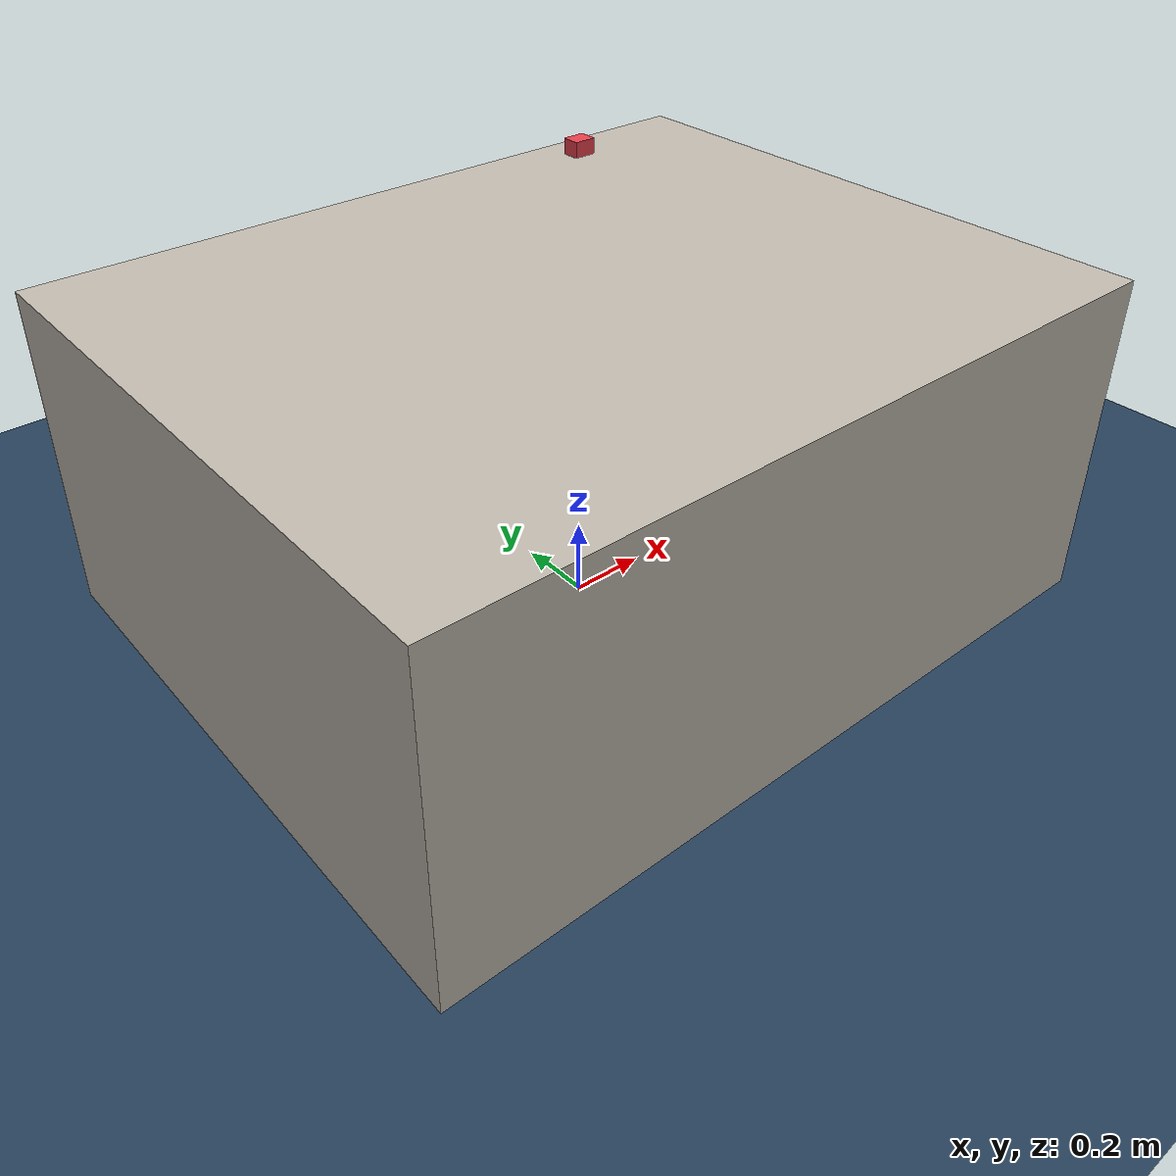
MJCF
<mujoco model="tabletop">
    <compiler angle="radian" />
    <size njmax="10000" nconmax="2000" />
	<option timestep="0.002">
		<flag warmstart="enable"></flag>
	</option>
    <option gravity="0 0 -9.8"/>
    <default class="table">
        <joint damping='0.1'/>
    </default>

    <asset>
        <!--Textures-->
        <texture name="floor_tex"   type="2d"       builtin="checker" rgb1=".2 .3 .4" rgb2=".1 .2 .3" width="100" height="100" />
        <texture name="table_tex"   type="2d"       builtin="none" file="../textures/table_test.png" rgb1=".2 .3 .4" rgb2=".1 .2 .3" width="100" height="100" />
        <!--Materials-->
        <material name='floor_mat'      texture="floor_tex"  shininess="0.8" texrepeat="10 10" specular="0.7"  reflectance="0.5" />
        <!--material name="bench_mat"      texture="floor_tex"   shininess="0.1" specular="0.5" reflectance="0.2"/-->
        <material name="bench_mat"      texture="table_tex"   shininess="0.1" specular="0.1" reflectance="0.2"/>
    </asset>
    <worldbody>
        <!--Lighting parameters-->
        <light name="light3" mode="targetbody" target="box_link" directional="true" pos="1 1 3" />

        <!--Floor Property-->
        <geom name='floor' material="floor_mat" pos='0 0 0' size='2.5 2.5 0.1'  type='plane' />

        <body mocap="true" name="robot0:mocap" pos="0 0 0">
            <geom conaffinity="0" contype="0" pos="0 0 0" rgba="0 0.5 0 0.0" size="0.005 0.005 0.005" type="box"></geom>
            <geom conaffinity="0" contype="0" pos="0 0 0" rgba="0 0.5 0 0.0" size="1 0.005 0.005" type="box"></geom>
            <geom conaffinity="0" contype="0" pos="0 0 0" rgba="0 0.5 0 0.0" size="0.005 1 0.001" type="box"></geom>
            <geom conaffinity="0" contype="0" pos="0 0 0" rgba="0 0.5 0 0.0" size="0.005 0.005 1" type="box"></geom>
        </body>

        <body name="box_link" pos="0 0 0.435">
            <geom size="1.0 .8 .435" type="box" material="bench_mat" solimp="0.99 0.99 0.01" solref="0.001 1.0" friction="1.0 1.0 1.0"/>
            <inertial pos="0 0 0" mass="1000" diaginertia="0 0 0" />
        </body>

        <!--CUBE-->
        <body name="target_body_0" pos="0.0 0.0 1.2">
            <joint name="target_0_joint" type="hinge" limited="false" damping="0" armature="0."/>
            <geom name="target_0" pos="0 0 0" size="0.025 0.02 0.0175" type="box"
                rgba="0.9 0.25 0.3 1" condim="3" mass="0.02"
                solimp="0.9 0.95 0.001" solref="0.02 1.0" friction="0.1 0.1 0.002"/>
        </body>

        <!--CAMERA-->
        <camera mode="fixed" name="frontview" pos="0.81725 1.34 0.84" euler="-1.5708 0 0"/>
        <camera mode="fixed" name="rlview" pos="0.0 0.65 1.75" quat="0.966 -0.259 0 0"/>
        <camera mode="fixed" name="rlview2" pos="0.0 0.1 1.8" quat="1 0 0 0"/>
        <!--camera mode="fixed" name="rlview" pos="0.0 1.5 2.0" quat="0.9238795325112867 -0.3826834323650898 0 0"/-->

    </worldbody>

</mujoco>
